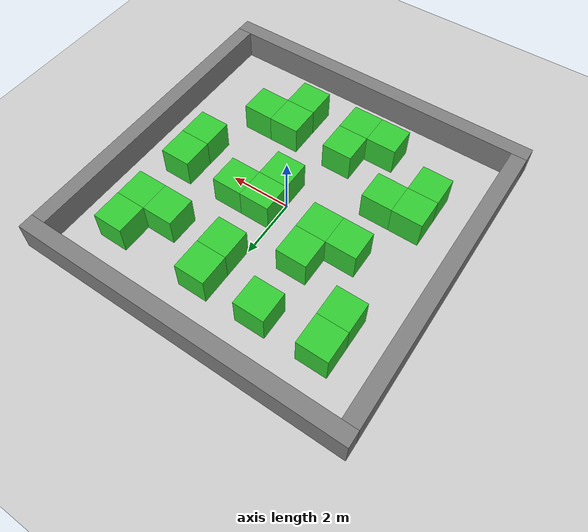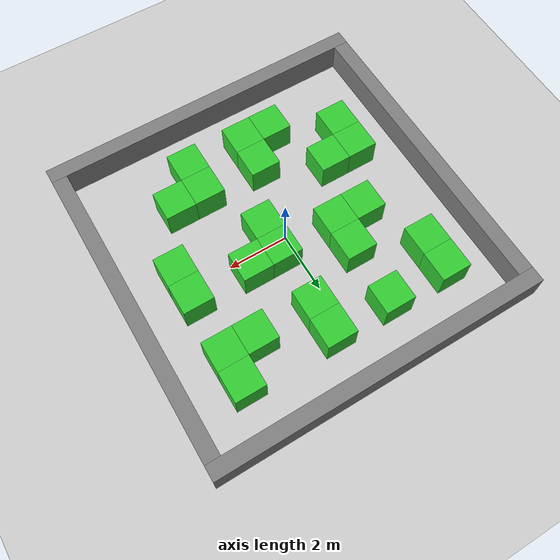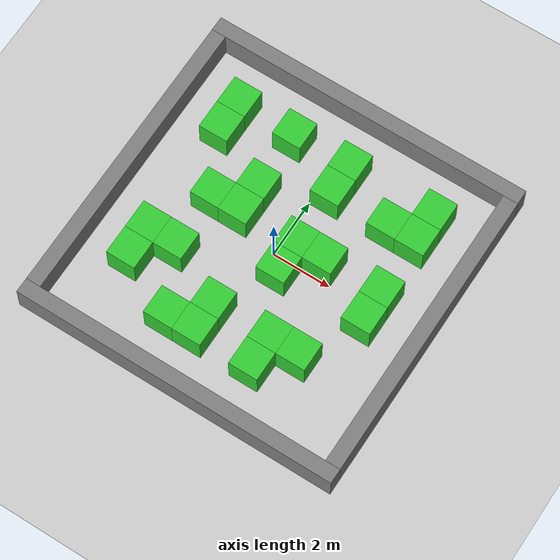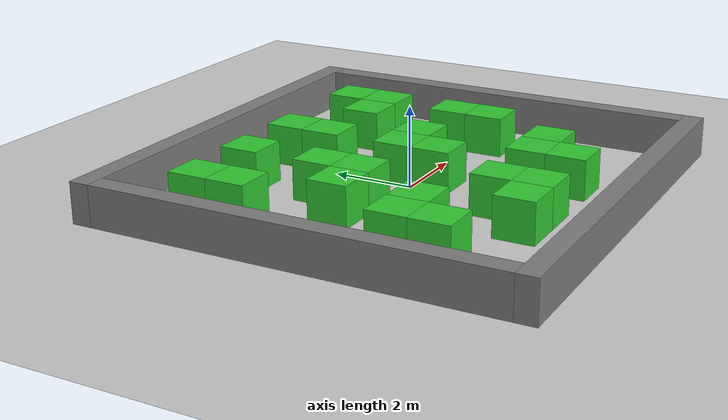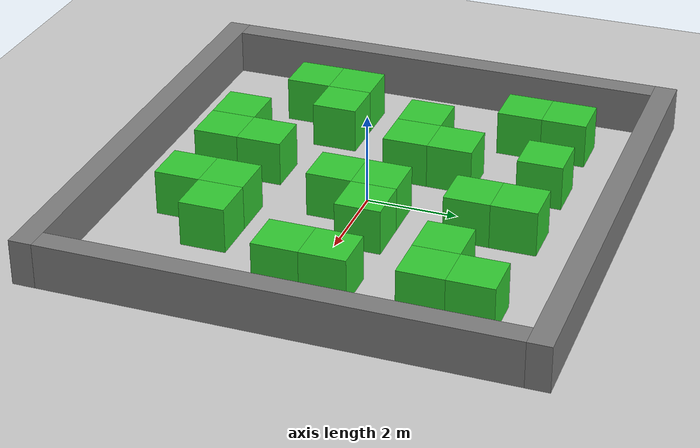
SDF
<?xml version="1.0" ?>
<sdf version="1.6">
  <world name="default">
    <include><uri>model://sun</uri></include>
    <include><uri>model://ground_plane</uri></include>

    <!-- Boundary walls -->
    <model name="bound_n"><pose>0 5.25 0.5 0 0 0</pose><static>true</static><link name="link"><collision name="collision"><geometry><box><size>11 0.5 1</size></box></geometry></collision><visual name="visual"><geometry><box><size>11 0.5 1</size></box></geometry><material><ambient>0.5 0.5 0.5 1</ambient></material></visual></link></model>
    <model name="bound_s"><pose>0 -5.25 0.5 0 0 0</pose><static>true</static><link name="link"><collision name="collision"><geometry><box><size>11 0.5 1</size></box></geometry></collision><visual name="visual"><geometry><box><size>11 0.5 1</size></box></geometry><material><ambient>0.5 0.5 0.5 1</ambient></material></visual></link></model>
    <model name="bound_e"><pose>5.25 0 0.5 0 0 0</pose><static>true</static><link name="link"><collision name="collision"><geometry><box><size>0.5 10 1</size></box></geometry></collision><visual name="visual"><geometry><box><size>0.5 10 1</size></box></geometry><material><ambient>0.5 0.5 0.5 1</ambient></material></visual></link></model>
    <model name="bound_w"><pose>-5.25 0 0.5 0 0 0</pose><static>true</static><link name="link"><collision name="collision"><geometry><box><size>0.5 10 1</size></box></geometry></collision><visual name="visual"><geometry><box><size>0.5 10 1</size></box></geometry><material><ambient>0.5 0.5 0.5 1</ambient></material></visual></link></model>

    <model name="obs_0">
      <pose>-3.5 -2.5 0.5 0 0 0</pose>
      <static>true</static>
      <link name="link">
        <collision name="collision"><geometry><box><size>1 1 1</size></box></geometry></collision>
        <visual name="visual"><geometry><box><size>1 1 1</size></box></geometry><material><ambient>0.2 0.8 0.2 1</ambient></material></visual>
      </link>
    </model>
    <model name="obs_1">
      <pose>-3.5 -1.5 0.5 0 0 0</pose>
      <static>true</static>
      <link name="link">
        <collision name="collision"><geometry><box><size>1 1 1</size></box></geometry></collision>
        <visual name="visual"><geometry><box><size>1 1 1</size></box></geometry><material><ambient>0.2 0.8 0.2 1</ambient></material></visual>
      </link>
    </model>
    <model name="obs_2">
      <pose>-3.5 2.5 0.5 0 0 0</pose>
      <static>true</static>
      <link name="link">
        <collision name="collision"><geometry><box><size>1 1 1</size></box></geometry></collision>
        <visual name="visual"><geometry><box><size>1 1 1</size></box></geometry><material><ambient>0.2 0.8 0.2 1</ambient></material></visual>
      </link>
    </model>
    <model name="obs_3">
      <pose>-3.5 3.5 0.5 0 0 0</pose>
      <static>true</static>
      <link name="link">
        <collision name="collision"><geometry><box><size>1 1 1</size></box></geometry></collision>
        <visual name="visual"><geometry><box><size>1 1 1</size></box></geometry><material><ambient>0.2 0.8 0.2 1</ambient></material></visual>
      </link>
    </model>
    <model name="obs_4">
      <pose>-2.5 -1.5 0.5 0 0 0</pose>
      <static>true</static>
      <link name="link">
        <collision name="collision"><geometry><box><size>1 1 1</size></box></geometry></collision>
        <visual name="visual"><geometry><box><size>1 1 1</size></box></geometry><material><ambient>0.2 0.8 0.2 1</ambient></material></visual>
      </link>
    </model>
    <model name="obs_5">
      <pose>-2.5 0.5 0.5 0 0 0</pose>
      <static>true</static>
      <link name="link">
        <collision name="collision"><geometry><box><size>1 1 1</size></box></geometry></collision>
        <visual name="visual"><geometry><box><size>1 1 1</size></box></geometry><material><ambient>0.2 0.8 0.2 1</ambient></material></visual>
      </link>
    </model>
    <model name="obs_6">
      <pose>-1.5 -3.5 0.5 0 0 0</pose>
      <static>true</static>
      <link name="link">
        <collision name="collision"><geometry><box><size>1 1 1</size></box></geometry></collision>
        <visual name="visual"><geometry><box><size>1 1 1</size></box></geometry><material><ambient>0.2 0.8 0.2 1</ambient></material></visual>
      </link>
    </model>
    <model name="obs_7">
      <pose>-1.5 0.5 0.5 0 0 0</pose>
      <static>true</static>
      <link name="link">
        <collision name="collision"><geometry><box><size>1 1 1</size></box></geometry></collision>
        <visual name="visual"><geometry><box><size>1 1 1</size></box></geometry><material><ambient>0.2 0.8 0.2 1</ambient></material></visual>
      </link>
    </model>
    <model name="obs_8">
      <pose>-1.5 1.5 0.5 0 0 0</pose>
      <static>true</static>
      <link name="link">
        <collision name="collision"><geometry><box><size>1 1 1</size></box></geometry></collision>
        <visual name="visual"><geometry><box><size>1 1 1</size></box></geometry><material><ambient>0.2 0.8 0.2 1</ambient></material></visual>
      </link>
    </model>
    <model name="obs_9">
      <pose>-1.5 3.5 0.5 0 0 0</pose>
      <static>true</static>
      <link name="link">
        <collision name="collision"><geometry><box><size>1 1 1</size></box></geometry></collision>
        <visual name="visual"><geometry><box><size>1 1 1</size></box></geometry><material><ambient>0.2 0.8 0.2 1</ambient></material></visual>
      </link>
    </model>
    <model name="obs_10">
      <pose>-0.5 -3.5 0.5 0 0 0</pose>
      <static>true</static>
      <link name="link">
        <collision name="collision"><geometry><box><size>1 1 1</size></box></geometry></collision>
        <visual name="visual"><geometry><box><size>1 1 1</size></box></geometry><material><ambient>0.2 0.8 0.2 1</ambient></material></visual>
      </link>
    </model>
    <model name="obs_11">
      <pose>-0.5 -2.5 0.5 0 0 0</pose>
      <static>true</static>
      <link name="link">
        <collision name="collision"><geometry><box><size>1 1 1</size></box></geometry></collision>
        <visual name="visual"><geometry><box><size>1 1 1</size></box></geometry><material><ambient>0.2 0.8 0.2 1</ambient></material></visual>
      </link>
    </model>
    <model name="obs_12">
      <pose>0.5 -0.5 0.5 0 0 0</pose>
      <static>true</static>
      <link name="link">
        <collision name="collision"><geometry><box><size>1 1 1</size></box></geometry></collision>
        <visual name="visual"><geometry><box><size>1 1 1</size></box></geometry><material><ambient>0.2 0.8 0.2 1</ambient></material></visual>
      </link>
    </model>
    <model name="obs_13">
      <pose>0.5 0.5 0.5 0 0 0</pose>
      <static>true</static>
      <link name="link">
        <collision name="collision"><geometry><box><size>1 1 1</size></box></geometry></collision>
        <visual name="visual"><geometry><box><size>1 1 1</size></box></geometry><material><ambient>0.2 0.8 0.2 1</ambient></material></visual>
      </link>
    </model>
    <model name="obs_14">
      <pose>0.5 2.5 0.5 0 0 0</pose>
      <static>true</static>
      <link name="link">
        <collision name="collision"><geometry><box><size>1 1 1</size></box></geometry></collision>
        <visual name="visual"><geometry><box><size>1 1 1</size></box></geometry><material><ambient>0.2 0.8 0.2 1</ambient></material></visual>
      </link>
    </model>
    <model name="obs_15">
      <pose>0.5 3.5 0.5 0 0 0</pose>
      <static>true</static>
      <link name="link">
        <collision name="collision"><geometry><box><size>1 1 1</size></box></geometry></collision>
        <visual name="visual"><geometry><box><size>1 1 1</size></box></geometry><material><ambient>0.2 0.8 0.2 1</ambient></material></visual>
      </link>
    </model>
    <model name="obs_16">
      <pose>1.5 -3.5 0.5 0 0 0</pose>
      <static>true</static>
      <link name="link">
        <collision name="collision"><geometry><box><size>1 1 1</size></box></geometry></collision>
        <visual name="visual"><geometry><box><size>1 1 1</size></box></geometry><material><ambient>0.2 0.8 0.2 1</ambient></material></visual>
      </link>
    </model>
    <model name="obs_17">
      <pose>1.5 -2.5 0.5 0 0 0</pose>
      <static>true</static>
      <link name="link">
        <collision name="collision"><geometry><box><size>1 1 1</size></box></geometry></collision>
        <visual name="visual"><geometry><box><size>1 1 1</size></box></geometry><material><ambient>0.2 0.8 0.2 1</ambient></material></visual>
      </link>
    </model>
    <model name="obs_18">
      <pose>1.5 0.5 0.5 0 0 0</pose>
      <static>true</static>
      <link name="link">
        <collision name="collision"><geometry><box><size>1 1 1</size></box></geometry></collision>
        <visual name="visual"><geometry><box><size>1 1 1</size></box></geometry><material><ambient>0.2 0.8 0.2 1</ambient></material></visual>
      </link>
    </model>
    <model name="obs_19">
      <pose>2.5 -2.5 0.5 0 0 0</pose>
      <static>true</static>
      <link name="link">
        <collision name="collision"><geometry><box><size>1 1 1</size></box></geometry></collision>
        <visual name="visual"><geometry><box><size>1 1 1</size></box></geometry><material><ambient>0.2 0.8 0.2 1</ambient></material></visual>
      </link>
    </model>
    <model name="obs_20">
      <pose>2.5 2.5 0.5 0 0 0</pose>
      <static>true</static>
      <link name="link">
        <collision name="collision"><geometry><box><size>1 1 1</size></box></geometry></collision>
        <visual name="visual"><geometry><box><size>1 1 1</size></box></geometry><material><ambient>0.2 0.8 0.2 1</ambient></material></visual>
      </link>
    </model>
    <model name="obs_21">
      <pose>3.5 -0.5 0.5 0 0 0</pose>
      <static>true</static>
      <link name="link">
        <collision name="collision"><geometry><box><size>1 1 1</size></box></geometry></collision>
        <visual name="visual"><geometry><box><size>1 1 1</size></box></geometry><material><ambient>0.2 0.8 0.2 1</ambient></material></visual>
      </link>
    </model>
    <model name="obs_22">
      <pose>3.5 0.5 0.5 0 0 0</pose>
      <static>true</static>
      <link name="link">
        <collision name="collision"><geometry><box><size>1 1 1</size></box></geometry></collision>
        <visual name="visual"><geometry><box><size>1 1 1</size></box></geometry><material><ambient>0.2 0.8 0.2 1</ambient></material></visual>
      </link>
    </model>
    <model name="obs_23">
      <pose>3.5 2.5 0.5 0 0 0</pose>
      <static>true</static>
      <link name="link">
        <collision name="collision"><geometry><box><size>1 1 1</size></box></geometry></collision>
        <visual name="visual"><geometry><box><size>1 1 1</size></box></geometry><material><ambient>0.2 0.8 0.2 1</ambient></material></visual>
      </link>
    </model>
    <model name="obs_24">
      <pose>3.5 3.5 0.5 0 0 0</pose>
      <static>true</static>
      <link name="link">
        <collision name="collision"><geometry><box><size>1 1 1</size></box></geometry></collision>
        <visual name="visual"><geometry><box><size>1 1 1</size></box></geometry><material><ambient>0.2 0.8 0.2 1</ambient></material></visual>
      </link>
    </model>

    <plugin name="gazebo_ros_state" filename="libgazebo_ros_state.so">
      <ros><namespace>/</namespace></ros><update_rate>50</update_rate>
    </plugin>
  </world>
</sdf>
